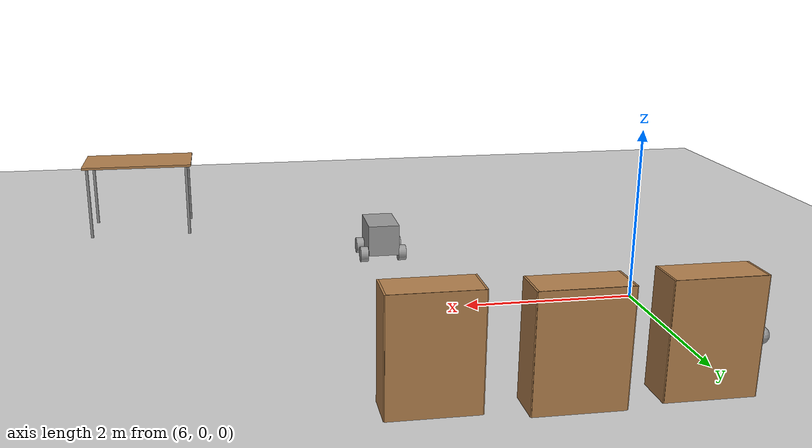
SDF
<sdf version="1.6">
 <world name="default">
  <model name="ground_plane">
   <static>1</static>
   <link name="link">
    <collision name="collision">
     <geometry><plane><normal>0 0 1</normal><size>100 100</size></plane></geometry>
     <surface>
      <contact><collide_bitmask>65535</collide_bitmask></contact>
      <friction><ode><mu>100</mu><mu2>50</mu2></ode></friction>
     </surface>
    </collision>
    <visual name="visual">
     <cast_shadows>0</cast_shadows>
     <geometry><plane><normal>0 0 1</normal><size>100 100</size></plane></geometry>
     <material>
      <script><uri>file://media/materials/scripts/gazebo.material</uri><name>Gazebo/Grey</name></script>
     </material>
    </visual>
   </link>
  </model>
  <model name="wayhicle">
   <link name="link_0">
    <pose>0 0 0.16 0 -0 0</pose>
    <inertial>
     <mass>1</mass>
     <inertia>
      <ixx>0.166667</ixx>
      <ixy>0</ixy>
      <ixz>0</ixz>
      <iyy>0.166667</iyy>
      <iyz>0</iyz>
      <izz>0.166667</izz>
     </inertia>
    </inertial>
    <visual name="visual">
     <geometry><box><size>0.4 0.6 0.4</size></box></geometry>
     <material>
      <lighting>1</lighting>
      <script><uri>file://media/materials/scripts/gazebo.material</uri><name>Gazebo/Grey</name></script>
      <shader type="pixel"><normal_map>__default__</normal_map></shader>
      <ambient>0.3 0.3 0.3 1</ambient>
      <diffuse>0.7 0.7 0.7 1</diffuse>
      <specular>0.01 0.01 0.01 1</specular>
      <emissive>0 0 0 1</emissive>
     </material>
    </visual>
    <collision name="collision">
     <geometry><box><size>0.4 0.6 0.4</size></box></geometry>
     <surface>
      <friction>
       <ode><mu>1</mu><mu2>1</mu2><fdir1>0 0 0</fdir1><slip1>0</slip1><slip2>0</slip2></ode>
       <torsional>
        <coefficient>1</coefficient>
        <patch_radius>0</patch_radius>
        <surface_radius>0</surface_radius>
        <use_patch_radius>1</use_patch_radius>
        <ode><slip>0</slip></ode>
       </torsional>
      </friction>
      <bounce><restitution_coefficient>0</restitution_coefficient><threshold>1e+06</threshold></bounce>
      <contact>
       <collide_without_contact>0</collide_without_contact>
       <collide_without_contact_bitmask>1</collide_without_contact_bitmask>
       <collide_bitmask>1</collide_bitmask>
       <ode>
        <soft_cfm>0</soft_cfm>
        <soft_erp>0.2</soft_erp>
        <kp>1e+13</kp>
        <kd>1</kd>
        <max_vel>0.01</max_vel>
        <min_depth>0</min_depth>
       </ode>
       <bullet>
        <split_impulse>1</split_impulse>
        <split_impulse_penetration_threshold>-0.01</split_impulse_penetration_threshold>
        <soft_cfm>0</soft_cfm>
        <soft_erp>0.2</soft_erp>
        <kp>1e+13</kp>
        <kd>1</kd>
       </bullet>
      </contact>
     </surface>
    </collision>
   </link>
   <link name="link_1">
    <pose>-0.25 -0.2 -0.04 1.5708 -0 1.5708</pose>
    <inertial>
     <mass>0.3</mass>
     <inertia><ixx>0.145833</ixx><ixy>0</ixy><ixz>0</ixz><iyy>0.145833</iyy><iyz>0</iyz><izz>0.125</izz></inertia>
    </inertial>
    <visual name="visual">
     <geometry><cylinder><radius>0.1</radius><length>0.1</length></cylinder></geometry>
     <material>
      <lighting>1</lighting>
      <script><uri>file://media/materials/scripts/gazebo.material</uri><name>Gazebo/Grey</name></script>
      <shader type="pixel"><normal_map>__default__</normal_map></shader>
      <ambient>0.3 0.3 0.3 1</ambient>
      <diffuse>0.7 0.7 0.7 1</diffuse>
      <specular>0.01 0.01 0.01 1</specular>
      <emissive>0 0 0 1</emissive>
     </material>
    </visual>
    <collision name="collision">
     <geometry><cylinder><radius>0.1</radius><length>0.1</length></cylinder></geometry>
     <surface>
      <friction>
       <ode><mu>1</mu><mu2>1</mu2><fdir1>0 0 0</fdir1><slip1>0</slip1><slip2>0</slip2></ode>
       <torsional>
        <coefficient>1</coefficient>
        <patch_radius>0</patch_radius>
        <surface_radius>0</surface_radius>
        <use_patch_radius>1</use_patch_radius>
        <ode><slip>0</slip></ode>
       </torsional>
      </friction>
      <bounce><restitution_coefficient>0</restitution_coefficient><threshold>1e+06</threshold></bounce>
      <contact>
       <collide_without_contact>0</collide_without_contact>
       <collide_without_contact_bitmask>1</collide_without_contact_bitmask>
       <collide_bitmask>1</collide_bitmask>
       <ode>
        <soft_cfm>0</soft_cfm>
        <soft_erp>0.2</soft_erp>
        <kp>1e+13</kp>
        <kd>1</kd>
        <max_vel>0.01</max_vel>
        <min_depth>0</min_depth>
       </ode>
       <bullet>
        <split_impulse>1</split_impulse>
        <split_impulse_penetration_threshold>-0.01</split_impulse_penetration_threshold>
        <soft_cfm>0</soft_cfm>
        <soft_erp>0.2</soft_erp>
        <kp>1e+13</kp>
        <kd>1</kd>
       </bullet>
      </contact>
     </surface>
    </collision>
   </link>
   <link name="link_1_clone">
    <pose>-0.25 0.2 -0.04 1.5708 -0 1.5708</pose>
    <inertial>
     <mass>0.3</mass>
     <inertia><ixx>0.145833</ixx><ixy>0</ixy><ixz>0</ixz><iyy>0.145833</iyy><iyz>0</iyz><izz>0.125</izz></inertia>
    </inertial>
    <visual name="visual">
     <geometry><cylinder><radius>0.1</radius><length>0.1</length></cylinder></geometry>
     <material>
      <lighting>1</lighting>
      <script><uri>file://media/materials/scripts/gazebo.material</uri><name>Gazebo/Grey</name></script>
      <shader type="pixel"><normal_map>__default__</normal_map></shader>
      <ambient>0.3 0.3 0.3 1</ambient>
      <diffuse>0.7 0.7 0.7 1</diffuse>
      <specular>0.01 0.01 0.01 1</specular>
      <emissive>0 0 0 1</emissive>
     </material>
    </visual>
    <collision name="collision">
     <geometry><cylinder><radius>0.1</radius><length>0.1</length></cylinder></geometry>
     <surface>
      <friction>
       <ode><mu>1</mu><mu2>1</mu2><fdir1>0 0 0</fdir1><slip1>0</slip1><slip2>0</slip2></ode>
       <torsional>
        <coefficient>1</coefficient>
        <patch_radius>0</patch_radius>
        <surface_radius>0</surface_radius>
        <use_patch_radius>1</use_patch_radius>
        <ode><slip>0</slip></ode>
       </torsional>
      </friction>
      <bounce><restitution_coefficient>0</restitution_coefficient><threshold>1e+06</threshold></bounce>
      <contact>
       <collide_without_contact>0</collide_without_contact>
       <collide_without_contact_bitmask>1</collide_without_contact_bitmask>
       <collide_bitmask>1</collide_bitmask>
       <ode>
        <soft_cfm>0</soft_cfm>
        <soft_erp>0.2</soft_erp>
        <kp>1e+13</kp>
        <kd>1</kd>
        <max_vel>0.01</max_vel>
        <min_depth>0</min_depth>
       </ode>
       <bullet>
        <split_impulse>1</split_impulse>
        <split_impulse_penetration_threshold>-0.01</split_impulse_penetration_threshold>
        <soft_cfm>0</soft_cfm>
        <soft_erp>0.2</soft_erp>
        <kp>1e+13</kp>
        <kd>1</kd>
       </bullet>
      </contact>
     </surface>
    </collision>
   </link>
   <link name="link_1_clone_0">
    <pose>0.25 -0.2 -0.04 1.5708 -0 1.5708</pose>
    <inertial>
     <mass>0.3</mass>
     <inertia><ixx>0.145833</ixx><ixy>0</ixy><ixz>0</ixz><iyy>0.145833</iyy><iyz>0</iyz><izz>0.125</izz></inertia>
    </inertial>
    <visual name="visual">
     <geometry><cylinder><radius>0.1</radius><length>0.1</length></cylinder></geometry>
     <material>
      <lighting>1</lighting>
      <script><uri>file://media/materials/scripts/gazebo.material</uri><name>Gazebo/Grey</name></script>
      <shader type="pixel"><normal_map>__default__</normal_map></shader>
      <ambient>0.3 0.3 0.3 1</ambient>
      <diffuse>0.7 0.7 0.7 1</diffuse>
      <specular>0.01 0.01 0.01 1</specular>
      <emissive>0 0 0 1</emissive>
     </material>
    </visual>
    <collision name="collision">
     <geometry><cylinder><radius>0.1</radius><length>0.1</length></cylinder></geometry>
     <surface>
      <friction>
       <ode><mu>1</mu><mu2>1</mu2><fdir1>0 0 0</fdir1><slip1>0</slip1><slip2>0</slip2></ode>
       <torsional>
        <coefficient>1</coefficient>
        <patch_radius>0</patch_radius>
        <surface_radius>0</surface_radius>
        <use_patch_radius>1</use_patch_radius>
        <ode><slip>0</slip></ode>
       </torsional>
      </friction>
      <bounce><restitution_coefficient>0</restitution_coefficient><threshold>1e+06</threshold></bounce>
      <contact>
       <collide_without_contact>0</collide_without_contact>
       <collide_without_contact_bitmask>1</collide_without_contact_bitmask>
       <collide_bitmask>1</collide_bitmask>
       <ode>
        <soft_cfm>0</soft_cfm>
        <soft_erp>0.2</soft_erp>
        <kp>1e+13</kp>
        <kd>1</kd>
        <max_vel>0.01</max_vel>
        <min_depth>0</min_depth>
       </ode>
       <bullet>
        <split_impulse>1</split_impulse>
        <split_impulse_penetration_threshold>-0.01</split_impulse_penetration_threshold>
        <soft_cfm>0</soft_cfm>
        <soft_erp>0.2</soft_erp>
        <kp>1e+13</kp>
        <kd>1</kd>
       </bullet>
      </contact>
     </surface>
    </collision>
   </link>
   <link name="link_1_clone_1">
    <pose>0.25 0.2 -0.04 1.5708 -0 1.5708</pose>
    <inertial>
     <mass>0.3</mass>
     <inertia><ixx>0.145833</ixx><ixy>0</ixy><ixz>0</ixz><iyy>0.145833</iyy><iyz>0</iyz><izz>0.125</izz></inertia>
    </inertial>
    <visual name="visual">
     <geometry><cylinder><radius>0.1</radius><length>0.1</length></cylinder></geometry>
     <material>
      <lighting>1</lighting>
      <script><uri>file://media/materials/scripts/gazebo.material</uri><name>Gazebo/Grey</name></script>
      <shader type="pixel"><normal_map>__default__</normal_map></shader>
      <ambient>0.3 0.3 0.3 1</ambient>
      <diffuse>0.7 0.7 0.7 1</diffuse>
      <specular>0.01 0.01 0.01 1</specular>
      <emissive>0 0 0 1</emissive>
     </material>
    </visual>
    <collision name="collision">
     <geometry><cylinder><radius>0.1</radius><length>0.1</length></cylinder></geometry>
     <surface>
      <friction>
       <ode><mu>1</mu><mu2>1</mu2><fdir1>0 0 0</fdir1><slip1>0</slip1><slip2>0</slip2></ode>
       <torsional>
        <coefficient>1</coefficient>
        <patch_radius>0</patch_radius>
        <surface_radius>0</surface_radius>
        <use_patch_radius>1</use_patch_radius>
        <ode><slip>0</slip></ode>
       </torsional>
      </friction>
      <bounce><restitution_coefficient>0</restitution_coefficient><threshold>1e+06</threshold></bounce>
      <contact>
       <collide_without_contact>0</collide_without_contact>
       <collide_without_contact_bitmask>1</collide_without_contact_bitmask>
       <collide_bitmask>1</collide_bitmask>
       <ode>
        <soft_cfm>0</soft_cfm>
        <soft_erp>0.2</soft_erp>
        <kp>1e+13</kp>
        <kd>1</kd>
        <max_vel>0.01</max_vel>
        <min_depth>0</min_depth>
       </ode>
       <bullet>
        <split_impulse>1</split_impulse>
        <split_impulse_penetration_threshold>-0.01</split_impulse_penetration_threshold>
        <soft_cfm>0</soft_cfm>
        <soft_erp>0.2</soft_erp>
        <kp>1e+13</kp>
        <kd>1</kd>
       </bullet>
      </contact>
     </surface>
    </collision>
   </link>
   <joint name="link_0_JOINT_0" type="revolute">
    <parent>link_0</parent>
    <child>link_1</child>
    <axis>
     <xyz>0 0 1</xyz>
     <use_parent_model_frame>0</use_parent_model_frame>
     <limit>
      <lower>-1.79769e+308</lower>
      <upper>1.79769e+308</upper>
      <effort>-1</effort>
      <velocity>-1</velocity>
     </limit>
     <dynamics>
      <spring_reference>0</spring_reference>
      <spring_stiffness>0</spring_stiffness>
      <damping>0</damping>
     </dynamics>
    </axis>
    <physics>
     <ode><limit><cfm>0</cfm><erp>0.2</erp></limit><suspension><cfm>0</cfm><erp>0.2</erp></suspension></ode>
    </physics>
   </joint>
   <joint name="link_0_JOINT_1" type="revolute">
    <parent>link_0</parent>
    <child>link_1_clone</child>
    <axis>
     <xyz>0 0 1</xyz>
     <use_parent_model_frame>0</use_parent_model_frame>
     <limit>
      <lower>-1.79769e+308</lower>
      <upper>1.79769e+308</upper>
      <effort>-1</effort>
      <velocity>-1</velocity>
     </limit>
     <dynamics>
      <spring_reference>0</spring_reference>
      <spring_stiffness>0</spring_stiffness>
      <damping>0</damping>
     </dynamics>
    </axis>
    <physics>
     <ode><limit><cfm>0</cfm><erp>0.2</erp></limit><suspension><cfm>0</cfm><erp>0.2</erp></suspension></ode>
    </physics>
   </joint>
   <joint name="link_0_JOINT_2" type="revolute">
    <parent>link_0</parent>
    <child>link_1_clone_0</child>
    <axis>
     <xyz>0 0 1</xyz>
     <use_parent_model_frame>0</use_parent_model_frame>
     <limit>
      <lower>-1.79769e+308</lower>
      <upper>1.79769e+308</upper>
      <effort>-1</effort>
      <velocity>-1</velocity>
     </limit>
     <dynamics>
      <spring_reference>0</spring_reference>
      <spring_stiffness>0</spring_stiffness>
      <damping>0</damping>
     </dynamics>
    </axis>
    <physics>
     <ode><limit><cfm>0</cfm><erp>0.2</erp></limit><suspension><cfm>0</cfm><erp>0.2</erp></suspension></ode>
    </physics>
   </joint>
   <joint name="link_0_JOINT_3" type="revolute">
    <parent>link_0</parent>
    <child>link_1_clone_1</child>
    <axis>
     <xyz>0 0 1</xyz>
     <use_parent_model_frame>0</use_parent_model_frame>
     <limit>
      <lower>-1.79769e+308</lower>
      <upper>1.79769e+308</upper>
      <effort>-1</effort>
      <velocity>-1</velocity>
     </limit>
     <dynamics>
      <spring_reference>0</spring_reference>
      <spring_stiffness>0</spring_stiffness>
      <damping>0</damping>
     </dynamics>
    </axis>
    <physics>
     <ode><limit><cfm>0</cfm><erp>0.2</erp></limit><suspension><cfm>0</cfm><erp>0.2</erp></suspension></ode>
    </physics>
   </joint>
   <static>0</static>
   <pose>8.6858 -1.96299 0.139991 5e-06 -1e-06 0.000924</pose>
  </model>
  <model name="bookshelf">
   <static>1</static>
   <link name="link">
    <inertial><mass>1</mass></inertial>
    <collision name="back">
     <pose>0 0.005 0.6 0 -0 0</pose>
     <geometry><box><size>0.9 0.01 1.2</size></box></geometry>
    </collision>
    <visual name="visual1">
     <pose>0 0.005 0.6 0 -0 0</pose>
     <geometry><box><size>0.9 0.01 1.2</size></box></geometry>
     <material>
      <script><uri>file://media/materials/scripts/gazebo.material</uri><name>Gazebo/Wood</name></script>
     </material>
    </visual>
    <collision name="left_side">
     <pose>0.45 -0.195 0.6 0 -0 0</pose>
     <geometry><box><size>0.02 0.4 1.2</size></box></geometry>
    </collision>
    <visual name="visual2">
     <pose>0.45 -0.195 0.6 0 -0 0</pose>
     <geometry><box><size>0.02 0.4 1.2</size></box></geometry>
     <material>
      <script><uri>file://media/materials/scripts/gazebo.material</uri><name>Gazebo/Wood</name></script>
     </material>
    </visual>
    <collision name="right_side">
     <pose>-0.45 -0.195 0.6 0 -0 0</pose>
     <geometry><box><size>0.02 0.4 1.2</size></box></geometry>
    </collision>
    <visual name="visual3">
     <pose>-0.45 -0.195 0.6 0 -0 0</pose>
     <geometry><box><size>0.02 0.4 1.2</size></box></geometry>
     <material>
      <script><uri>file://media/materials/scripts/gazebo.material</uri><name>Gazebo/Wood</name></script>
     </material>
    </visual>
    <collision name="bottom">
     <pose>0 -0.195 0.03 0 -0 0</pose>
     <geometry><box><size>0.88 0.4 0.06</size></box></geometry>
    </collision>
    <visual name="visual4">
     <pose>0 -0.195 0.03 0 -0 0</pose>
     <geometry><box><size>0.88 0.4 0.06</size></box></geometry>
     <material>
      <script><uri>file://media/materials/scripts/gazebo.material</uri><name>Gazebo/Wood</name></script>
     </material>
    </visual>
    <collision name="top">
     <pose>0 -0.195 1.19 0 -0 0</pose>
     <geometry><box><size>0.88 0.4 0.02</size></box></geometry>
    </collision>
    <visual name="visual5">
     <pose>0 -0.195 1.19 0 -0 0</pose>
     <geometry><box><size>0.88 0.4 0.02</size></box></geometry>
     <material>
      <script><uri>file://media/materials/scripts/gazebo.material</uri><name>Gazebo/Wood</name></script>
     </material>
    </visual>
    <collision name="low_shelf">
     <pose>0 -0.195 0.43 0 -0 0</pose>
     <geometry><box><size>0.88 0.4 0.02</size></box></geometry>
    </collision>
    <visual name="visual6">
     <pose>0 -0.195 0.43 0 -0 0</pose>
     <geometry><box><size>0.88 0.4 0.02</size></box></geometry>
     <material>
      <script><uri>file://media/materials/scripts/gazebo.material</uri><name>Gazebo/Wood</name></script>
     </material>
    </visual>
    <collision name="high_shelf">
     <pose>0 -0.195 0.8 0 -0 0</pose>
     <geometry><box><size>0.88 0.4 0.02</size></box></geometry>
    </collision>
    <visual name="visual7">
     <pose>0 -0.195 0.8 0 -0 0</pose>
     <geometry><box><size>0.88 0.4 0.02</size></box></geometry>
     <material>
      <script><uri>file://media/materials/scripts/gazebo.material</uri><name>Gazebo/Wood</name></script>
     </material>
    </visual>
   </link>
   <pose>8.95443 2.61495 0 0 -0 0</pose>
  </model>
  <model name="bookshelf_clone">
   <static>1</static>
   <link name="link">
    <inertial><mass>1</mass></inertial>
    <collision name="back">
     <pose>0 0.005 0.6 0 -0 0</pose>
     <geometry><box><size>0.9 0.01 1.2</size></box></geometry>
    </collision>
    <visual name="visual1">
     <pose>0 0.005 0.6 0 -0 0</pose>
     <geometry><box><size>0.9 0.01 1.2</size></box></geometry>
     <material>
      <script><uri>file://media/materials/scripts/gazebo.material</uri><name>Gazebo/Wood</name></script>
     </material>
    </visual>
    <collision name="left_side">
     <pose>0.45 -0.195 0.6 0 -0 0</pose>
     <geometry><box><size>0.02 0.4 1.2</size></box></geometry>
    </collision>
    <visual name="visual2">
     <pose>0.45 -0.195 0.6 0 -0 0</pose>
     <geometry><box><size>0.02 0.4 1.2</size></box></geometry>
     <material>
      <script><uri>file://media/materials/scripts/gazebo.material</uri><name>Gazebo/Wood</name></script>
     </material>
    </visual>
    <collision name="right_side">
     <pose>-0.45 -0.195 0.6 0 -0 0</pose>
     <geometry><box><size>0.02 0.4 1.2</size></box></geometry>
    </collision>
    <visual name="visual3">
     <pose>-0.45 -0.195 0.6 0 -0 0</pose>
     <geometry><box><size>0.02 0.4 1.2</size></box></geometry>
     <material>
      <script><uri>file://media/materials/scripts/gazebo.material</uri><name>Gazebo/Wood</name></script>
     </material>
    </visual>
    <collision name="bottom">
     <pose>0 -0.195 0.03 0 -0 0</pose>
     <geometry><box><size>0.88 0.4 0.06</size></box></geometry>
    </collision>
    <visual name="visual4">
     <pose>0 -0.195 0.03 0 -0 0</pose>
     <geometry><box><size>0.88 0.4 0.06</size></box></geometry>
     <material>
      <script><uri>file://media/materials/scripts/gazebo.material</uri><name>Gazebo/Wood</name></script>
     </material>
    </visual>
    <collision name="top">
     <pose>0 -0.195 1.19 0 -0 0</pose>
     <geometry><box><size>0.88 0.4 0.02</size></box></geometry>
    </collision>
    <visual name="visual5">
     <pose>0 -0.195 1.19 0 -0 0</pose>
     <geometry><box><size>0.88 0.4 0.02</size></box></geometry>
     <material>
      <script><uri>file://media/materials/scripts/gazebo.material</uri><name>Gazebo/Wood</name></script>
     </material>
    </visual>
    <collision name="low_shelf">
     <pose>0 -0.195 0.43 0 -0 0</pose>
     <geometry><box><size>0.88 0.4 0.02</size></box></geometry>
    </collision>
    <visual name="visual6">
     <pose>0 -0.195 0.43 0 -0 0</pose>
     <geometry><box><size>0.88 0.4 0.02</size></box></geometry>
     <material>
      <script><uri>file://media/materials/scripts/gazebo.material</uri><name>Gazebo/Wood</name></script>
     </material>
    </visual>
    <collision name="high_shelf">
     <pose>0 -0.195 0.8 0 -0 0</pose>
     <geometry><box><size>0.88 0.4 0.02</size></box></geometry>
    </collision>
    <visual name="visual7">
     <pose>0 -0.195 0.8 0 -0 0</pose>
     <geometry><box><size>0.88 0.4 0.02</size></box></geometry>
     <material>
      <script><uri>file://media/materials/scripts/gazebo.material</uri><name>Gazebo/Wood</name></script>
     </material>
    </visual>
   </link>
   <pose>7.64326 2.73386 0 0 -0 0</pose>
  </model>
  <model name="bookshelf_clone_0">
   <static>1</static>
   <link name="link">
    <inertial><mass>1</mass></inertial>
    <collision name="back">
     <pose>0 0.005 0.6 0 -0 0</pose>
     <geometry><box><size>0.9 0.01 1.2</size></box></geometry>
    </collision>
    <visual name="visual1">
     <pose>0 0.005 0.6 0 -0 0</pose>
     <geometry><box><size>0.9 0.01 1.2</size></box></geometry>
     <material>
      <script><uri>file://media/materials/scripts/gazebo.material</uri><name>Gazebo/Wood</name></script>
     </material>
    </visual>
    <collision name="left_side">
     <pose>0.45 -0.195 0.6 0 -0 0</pose>
     <geometry><box><size>0.02 0.4 1.2</size></box></geometry>
    </collision>
    <visual name="visual2">
     <pose>0.45 -0.195 0.6 0 -0 0</pose>
     <geometry><box><size>0.02 0.4 1.2</size></box></geometry>
     <material>
      <script><uri>file://media/materials/scripts/gazebo.material</uri><name>Gazebo/Wood</name></script>
     </material>
    </visual>
    <collision name="right_side">
     <pose>-0.45 -0.195 0.6 0 -0 0</pose>
     <geometry><box><size>0.02 0.4 1.2</size></box></geometry>
    </collision>
    <visual name="visual3">
     <pose>-0.45 -0.195 0.6 0 -0 0</pose>
     <geometry><box><size>0.02 0.4 1.2</size></box></geometry>
     <material>
      <script><uri>file://media/materials/scripts/gazebo.material</uri><name>Gazebo/Wood</name></script>
     </material>
    </visual>
    <collision name="bottom">
     <pose>0 -0.195 0.03 0 -0 0</pose>
     <geometry><box><size>0.88 0.4 0.06</size></box></geometry>
    </collision>
    <visual name="visual4">
     <pose>0 -0.195 0.03 0 -0 0</pose>
     <geometry><box><size>0.88 0.4 0.06</size></box></geometry>
     <material>
      <script><uri>file://media/materials/scripts/gazebo.material</uri><name>Gazebo/Wood</name></script>
     </material>
    </visual>
    <collision name="top">
     <pose>0 -0.195 1.19 0 -0 0</pose>
     <geometry><box><size>0.88 0.4 0.02</size></box></geometry>
    </collision>
    <visual name="visual5">
     <pose>0 -0.195 1.19 0 -0 0</pose>
     <geometry><box><size>0.88 0.4 0.02</size></box></geometry>
     <material>
      <script><uri>file://media/materials/scripts/gazebo.material</uri><name>Gazebo/Wood</name></script>
     </material>
    </visual>
    <collision name="low_shelf">
     <pose>0 -0.195 0.43 0 -0 0</pose>
     <geometry><box><size>0.88 0.4 0.02</size></box></geometry>
    </collision>
    <visual name="visual6">
     <pose>0 -0.195 0.43 0 -0 0</pose>
     <geometry><box><size>0.88 0.4 0.02</size></box></geometry>
     <material>
      <script><uri>file://media/materials/scripts/gazebo.material</uri><name>Gazebo/Wood</name></script>
     </material>
    </visual>
    <collision name="high_shelf">
     <pose>0 -0.195 0.8 0 -0 0</pose>
     <geometry><box><size>0.88 0.4 0.02</size></box></geometry>
    </collision>
    <visual name="visual7">
     <pose>0 -0.195 0.8 0 -0 0</pose>
     <geometry><box><size>0.88 0.4 0.02</size></box></geometry>
     <material>
      <script><uri>file://media/materials/scripts/gazebo.material</uri><name>Gazebo/Wood</name></script>
     </material>
    </visual>
   </link>
   <pose>6.3555 2.65697 0 0 -0 0</pose>
  </model>
  <model name="table">
   <static>1</static>
   <link name="link">
    <collision name="surface">
     <pose>0 0 1 0 -0 0</pose>
     <geometry><box><size>1.5 0.8 0.03</size></box></geometry>
     <surface><friction><ode><mu>0.6</mu><mu2>0.6</mu2></ode></friction></surface>
    </collision>
    <visual name="visual1">
     <pose>0 0 1 0 -0 0</pose>
     <geometry><box><size>1.5 0.8 0.03</size></box></geometry>
     <material>
      <script><uri>file://media/materials/scripts/gazebo.material</uri><name>Gazebo/Wood</name></script>
     </material>
    </visual>
    <collision name="front_left_leg">
     <pose>0.68 0.38 0.5 0 -0 0</pose>
     <geometry><cylinder><radius>0.02</radius><length>1</length></cylinder></geometry>
    </collision>
    <visual name="front_left_leg">
     <pose>0.68 0.38 0.5 0 -0 0</pose>
     <geometry><cylinder><radius>0.02</radius><length>1</length></cylinder></geometry>
     <material>
      <script><uri>file://media/materials/scripts/gazebo.material</uri><name>Gazebo/Grey</name></script>
     </material>
    </visual>
    <collision name="front_right_leg">
     <pose>0.68 -0.38 0.5 0 -0 0</pose>
     <geometry><cylinder><radius>0.02</radius><length>1</length></cylinder></geometry>
    </collision>
    <visual name="front_right_leg">
     <pose>0.68 -0.38 0.5 0 -0 0</pose>
     <geometry><cylinder><radius>0.02</radius><length>1</length></cylinder></geometry>
     <material>
      <script><uri>file://media/materials/scripts/gazebo.material</uri><name>Gazebo/Grey</name></script>
     </material>
    </visual>
    <collision name="back_right_leg">
     <pose>-0.68 -0.38 0.5 0 -0 0</pose>
     <geometry><cylinder><radius>0.02</radius><length>1</length></cylinder></geometry>
    </collision>
    <visual name="back_right_leg">
     <pose>-0.68 -0.38 0.5 0 -0 0</pose>
     <geometry><cylinder><radius>0.02</radius><length>1</length></cylinder></geometry>
     <material>
      <script><uri>file://media/materials/scripts/gazebo.material</uri><name>Gazebo/Grey</name></script>
     </material>
    </visual>
    <collision name="back_left_leg">
     <pose>-0.68 0.38 0.5 0 -0 0</pose>
     <geometry><cylinder><radius>0.02</radius><length>1</length></cylinder></geometry>
    </collision>
    <visual name="back_left_leg">
     <pose>-0.68 0.38 0.5 0 -0 0</pose>
     <geometry><cylinder><radius>0.02</radius><length>1</length></cylinder></geometry>
     <material>
      <script><uri>file://media/materials/scripts/gazebo.material</uri><name>Gazebo/Grey</name></script>
     </material>
    </visual>
   </link>
   <pose>11.9155 -3.77259 0 0 -0 0</pose>
  </model>
  <model name="my_ball">
   <link name="link_0">
    <inertial>
     <mass>1</mass>
     <inertia><ixx>0.1</ixx><ixy>0</ixy><ixz>0</ixz><iyy>0.1</iyy><iyz>0</iyz><izz>0.1</izz></inertia>
    </inertial>
    <visual name="visual">
     <geometry><sphere><radius>0.1</radius></sphere></geometry>
     <material>
      <lighting>1</lighting>
      <script><uri>file://media/materials/scripts/gazebo.material</uri><name>Gazebo/Grey</name></script>
      <ambient>1 1 1 1</ambient>
      <diffuse>1 1 1 1</diffuse>
      <specular>1 1 1 1</specular>
      <emissive>1 1 1 1</emissive>
      <shader type="vertex"><normal_map>__default__</normal_map></shader>
     </material>
    </visual>
    <collision name="collision">
     <geometry><sphere><radius>0.1</radius></sphere></geometry>
     <surface>
      <friction>
       <ode><mu>1</mu><mu2>1</mu2><fdir1>0 0 0</fdir1><slip1>0</slip1><slip2>0</slip2></ode>
       <torsional>
        <coefficient>1</coefficient>
        <patch_radius>0</patch_radius>
        <surface_radius>0</surface_radius>
        <use_patch_radius>1</use_patch_radius>
        <ode><slip>0</slip></ode>
       </torsional>
      </friction>
      <bounce><restitution_coefficient>0</restitution_coefficient><threshold>1e+06</threshold></bounce>
      <contact>
       <collide_without_contact>0</collide_without_contact>
       <collide_without_contact_bitmask>1</collide_without_contact_bitmask>
       <collide_bitmask>1</collide_bitmask>
       <ode>
        <soft_cfm>0</soft_cfm>
        <soft_erp>0.2</soft_erp>
        <kp>1e+13</kp>
        <kd>1</kd>
        <max_vel>0.01</max_vel>
        <min_depth>0</min_depth>
       </ode>
       <bullet>
        <split_impulse>1</split_impulse>
        <split_impulse_penetration_threshold>-0.01</split_impulse_penetration_threshold>
        <soft_cfm>0</soft_cfm>
        <soft_erp>0.2</soft_erp>
        <kp>1e+13</kp>
        <kd>1</kd>
       </bullet>
      </contact>
     </surface>
    </collision>
   </link>
   <static>0</static>
   <pose>5.22591 1.5396 0.1 0 -0 0</pose>
  </model>
 </world>
</sdf>
